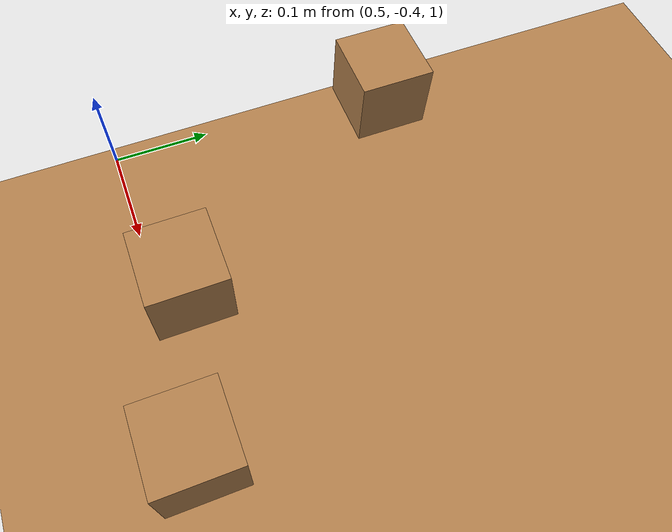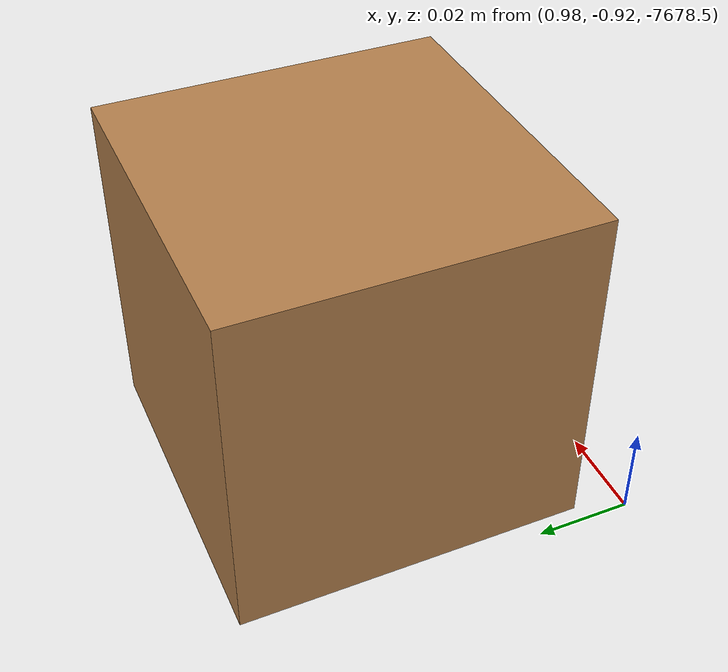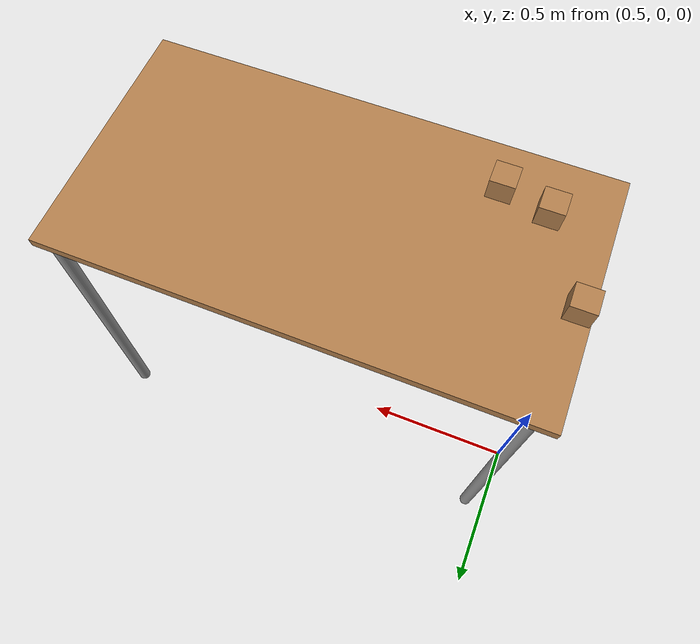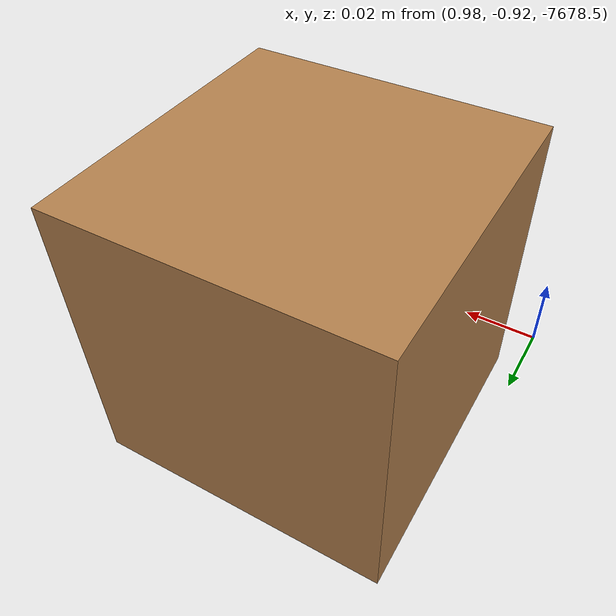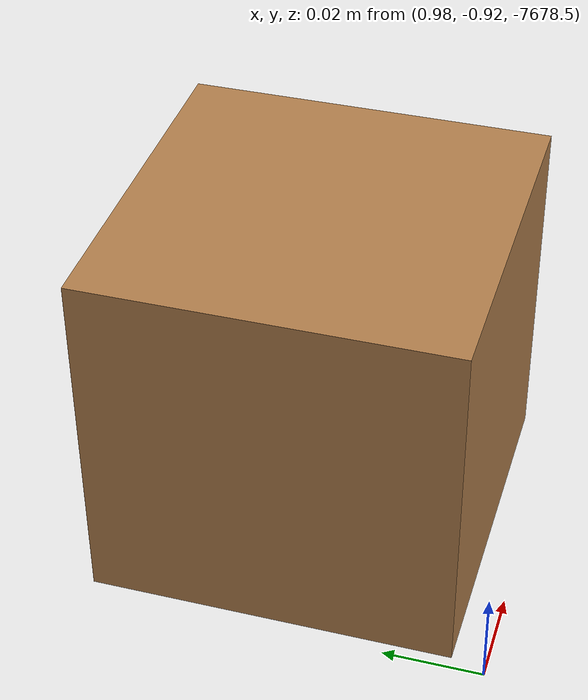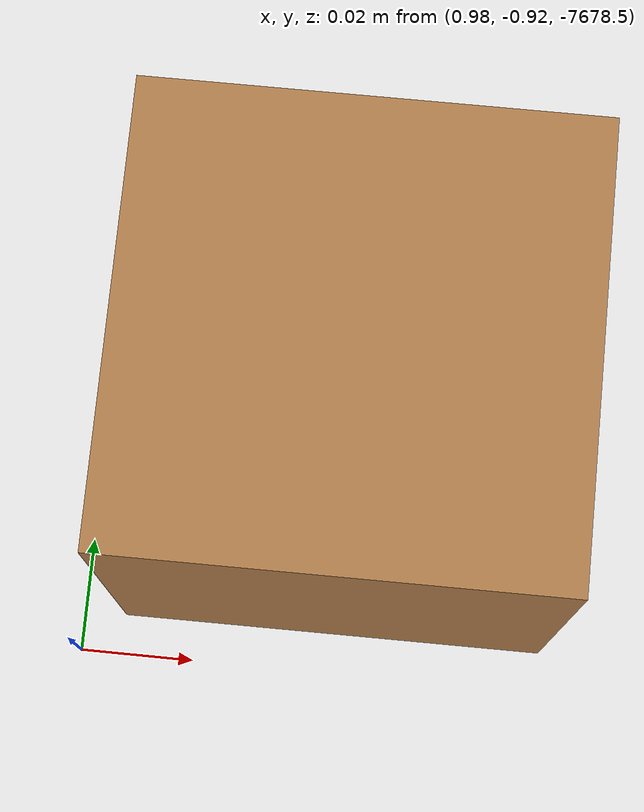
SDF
<sdf version="1.7">
 <world name="__default__">
  <plugin name="gazebo_link_attacher" filename="libgazebo_link_attacher.so"/>
  <gravity>0 0 -9.8</gravity>
  <plugin name="gazebo_ros" filename="libgazebo_ros_api_plugin.so"/>
  <magnetic_field>6e-06 2.3e-05 -4.2e-05</magnetic_field>
  <atmosphere type="adiabatic"/>
  <physics type="ode">
   <max_step_size>0.001</max_step_size>
   <real_time_factor>1</real_time_factor>
   <real_time_update_rate>1000</real_time_update_rate>
  </physics>
  <scene><ambient>0.4 0.4 0.4 1</ambient><background>0.7 0.7 0.7 1</background><shadows>1</shadows></scene>
  <audio><device>default</device></audio>
  <spherical_coordinates>
   <surface_model>EARTH_WGS84</surface_model>
   <latitude_deg>0</latitude_deg>
   <longitude_deg>0</longitude_deg>
   <elevation>0</elevation>
   <heading_deg>0</heading_deg>
  </spherical_coordinates>
  <model name="wood_cube_7_5cm">
   <link name="link">
    <pose>-0.193128 -0.263736 1.35242 0 -0 0</pose>
    <inertial>
     <mass>0.2249</mass>
     <inertia>
      <ixx>0.00021084</ixx>
      <ixy>0</ixy>
      <ixz>0</ixz>
      <iyy>0.00021084</iyy>
      <iyz>0</iyz>
      <izz>0.00021084</izz>
     </inertia>
    </inertial>
    <visual name="visual">
     <geometry><box><size>0.075 0.075 0.075</size></box></geometry>
     <material>
      <script><uri>file://media/materials/scripts/gazebo.material</uri><name>Gazebo/Wood</name></script>
      <shader type="pixel"><normal_map>__default__</normal_map></shader>
      <ambient>1 0 0 0</ambient>
      <diffuse>1 1 1 1</diffuse>
      <specular>0.2 0.2 0.2 1</specular>
      <emissive>0 0 0 1</emissive>
     </material>
    </visual>
    <collision name="collision">
     <geometry><box><size>0.075 0.075 0.075</size></box></geometry>
     <surface>
      <friction>
       <ode><mu>1</mu><mu2>1</mu2><fdir1>0 0 0</fdir1><slip1>0</slip1><slip2>0</slip2></ode>
       <torsional>
        <coefficient>1</coefficient>
        <patch_radius>0</patch_radius>
        <surface_radius>0.01</surface_radius>
        <use_patch_radius>0</use_patch_radius>
        <ode><slip>0</slip></ode>
       </torsional>
      </friction>
      <bounce><restitution_coefficient>0</restitution_coefficient><threshold>1e+06</threshold></bounce>
      <contact>
       <collide_without_contact>0</collide_without_contact>
       <collide_without_contact_bitmask>1</collide_without_contact_bitmask>
       <collide_bitmask>1</collide_bitmask>
       <ode>
        <soft_cfm>0</soft_cfm>
        <soft_erp>0.2</soft_erp>
        <kp>100000</kp>
        <kd>100</kd>
        <max_vel>100</max_vel>
        <min_depth>0.001</min_depth>
       </ode>
       <bullet>
        <split_impulse>1</split_impulse>
        <split_impulse_penetration_threshold>-0.01</split_impulse_penetration_threshold>
        <soft_cfm>0</soft_cfm>
        <soft_erp>0.2</soft_erp>
        <kp>100000</kp>
        <kd>100</kd>
       </bullet>
      </contact>
     </surface>
    </collision>
   </link>
   <static>0</static>
   <pose>0.730006 0.151457 -0.300925 0 -0 0</pose>
  </model>
  <model name="table">
   <link name="link">
    <pose>0 0 0.256357 0 -0 0</pose>
    <visual name="visual1">
     <pose>0 0 1 0 -0 0</pose>
     <geometry><box><size>1.5 0.8 0.03</size></box></geometry>
     <material>
      <script><uri>file://media/materials/scripts/gazebo.material</uri><name>Gazebo/Wood</name></script>
      <shader type="pixel"/>
     </material>
    </visual>
    <visual name="front_left_leg">
     <pose>0.68 0.38 0.5 0 -0 0</pose>
     <geometry><cylinder><radius>0.02</radius><length>1</length></cylinder></geometry>
     <material>
      <script><uri>file://media/materials/scripts/gazebo.material</uri><name>Gazebo/Grey</name></script>
      <shader type="pixel"/>
     </material>
    </visual>
    <visual name="front_right_leg">
     <pose>0.68 -0.38 0.5 0 -0 0</pose>
     <geometry><cylinder><radius>0.02</radius><length>1</length></cylinder></geometry>
     <material>
      <script><uri>file://media/materials/scripts/gazebo.material</uri><name>Gazebo/Grey</name></script>
      <shader type="pixel"/>
     </material>
    </visual>
    <visual name="back_right_leg">
     <pose>-0.68 -0.38 0.5 0 -0 0</pose>
     <geometry><cylinder><radius>0.02</radius><length>1</length></cylinder></geometry>
     <material>
      <script><uri>file://media/materials/scripts/gazebo.material</uri><name>Gazebo/Grey</name></script>
      <shader type="pixel"/>
     </material>
    </visual>
    <visual name="back_left_leg">
     <pose>-0.68 0.38 0.5 0 -0 0</pose>
     <geometry><cylinder><radius>0.02</radius><length>1</length></cylinder></geometry>
     <material>
      <script><uri>file://media/materials/scripts/gazebo.material</uri><name>Gazebo/Grey</name></script>
      <shader type="pixel"/>
     </material>
    </visual>
    <collision name="surface">
     <pose>0 0 1 0 -0 0</pose>
     <geometry><box><size>1.5 0.8 0.03</size></box></geometry>
     <surface>
      <friction>
       <ode><mu>0.6</mu><mu2>0.6</mu2><fdir1>0 0 0</fdir1><slip1>0</slip1><slip2>0</slip2></ode>
       <torsional>
        <coefficient>1</coefficient>
        <patch_radius>0</patch_radius>
        <surface_radius>0</surface_radius>
        <use_patch_radius>1</use_patch_radius>
        <ode><slip>0</slip></ode>
       </torsional>
      </friction>
      <bounce><restitution_coefficient>0</restitution_coefficient><threshold>1e+06</threshold></bounce>
      <contact>
       <collide_without_contact>0</collide_without_contact>
       <collide_without_contact_bitmask>1</collide_without_contact_bitmask>
       <collide_bitmask>1</collide_bitmask>
       <ode>
        <soft_cfm>0</soft_cfm>
        <soft_erp>0.2</soft_erp>
        <kp>1e+13</kp>
        <kd>1</kd>
        <max_vel>0.01</max_vel>
        <min_depth>0</min_depth>
       </ode>
       <bullet>
        <split_impulse>1</split_impulse>
        <split_impulse_penetration_threshold>-0.01</split_impulse_penetration_threshold>
        <soft_cfm>0</soft_cfm>
        <soft_erp>0.2</soft_erp>
        <kp>1e+13</kp>
        <kd>1</kd>
       </bullet>
      </contact>
     </surface>
    </collision>
    <collision name="front_left_leg">
     <pose>0.68 0.38 0.5 0 -0 0</pose>
     <geometry><cylinder><radius>0.02</radius><length>1</length></cylinder></geometry>
     <surface>
      <friction>
       <ode><mu>1</mu><mu2>1</mu2><fdir1>0 0 0</fdir1><slip1>0</slip1><slip2>0</slip2></ode>
       <torsional>
        <coefficient>1</coefficient>
        <patch_radius>0</patch_radius>
        <surface_radius>0</surface_radius>
        <use_patch_radius>1</use_patch_radius>
        <ode><slip>0</slip></ode>
       </torsional>
      </friction>
      <bounce><restitution_coefficient>0</restitution_coefficient><threshold>1e+06</threshold></bounce>
      <contact>
       <collide_without_contact>0</collide_without_contact>
       <collide_without_contact_bitmask>1</collide_without_contact_bitmask>
       <collide_bitmask>1</collide_bitmask>
       <ode>
        <soft_cfm>0</soft_cfm>
        <soft_erp>0.2</soft_erp>
        <kp>1e+13</kp>
        <kd>1</kd>
        <max_vel>0.01</max_vel>
        <min_depth>0</min_depth>
       </ode>
       <bullet>
        <split_impulse>1</split_impulse>
        <split_impulse_penetration_threshold>-0.01</split_impulse_penetration_threshold>
        <soft_cfm>0</soft_cfm>
        <soft_erp>0.2</soft_erp>
        <kp>1e+13</kp>
        <kd>1</kd>
       </bullet>
      </contact>
     </surface>
    </collision>
    <collision name="front_right_leg">
     <pose>0.68 -0.38 0.5 0 -0 0</pose>
     <geometry><cylinder><radius>0.02</radius><length>1</length></cylinder></geometry>
     <surface>
      <friction>
       <ode><mu>1</mu><mu2>1</mu2><fdir1>0 0 0</fdir1><slip1>0</slip1><slip2>0</slip2></ode>
       <torsional>
        <coefficient>1</coefficient>
        <patch_radius>0</patch_radius>
        <surface_radius>0</surface_radius>
        <use_patch_radius>1</use_patch_radius>
        <ode><slip>0</slip></ode>
       </torsional>
      </friction>
      <bounce><restitution_coefficient>0</restitution_coefficient><threshold>1e+06</threshold></bounce>
      <contact>
       <collide_without_contact>0</collide_without_contact>
       <collide_without_contact_bitmask>1</collide_without_contact_bitmask>
       <collide_bitmask>1</collide_bitmask>
       <ode>
        <soft_cfm>0</soft_cfm>
        <soft_erp>0.2</soft_erp>
        <kp>1e+13</kp>
        <kd>1</kd>
        <max_vel>0.01</max_vel>
        <min_depth>0</min_depth>
       </ode>
       <bullet>
        <split_impulse>1</split_impulse>
        <split_impulse_penetration_threshold>-0.01</split_impulse_penetration_threshold>
        <soft_cfm>0</soft_cfm>
        <soft_erp>0.2</soft_erp>
        <kp>1e+13</kp>
        <kd>1</kd>
       </bullet>
      </contact>
     </surface>
    </collision>
    <collision name="back_right_leg">
     <pose>-0.68 -0.38 0.5 0 -0 0</pose>
     <geometry><cylinder><radius>0.02</radius><length>1</length></cylinder></geometry>
     <surface>
      <friction>
       <ode><mu>1</mu><mu2>1</mu2><fdir1>0 0 0</fdir1><slip1>0</slip1><slip2>0</slip2></ode>
       <torsional>
        <coefficient>1</coefficient>
        <patch_radius>0</patch_radius>
        <surface_radius>0</surface_radius>
        <use_patch_radius>1</use_patch_radius>
        <ode><slip>0</slip></ode>
       </torsional>
      </friction>
      <bounce><restitution_coefficient>0</restitution_coefficient><threshold>1e+06</threshold></bounce>
      <contact>
       <collide_without_contact>0</collide_without_contact>
       <collide_without_contact_bitmask>1</collide_without_contact_bitmask>
       <collide_bitmask>1</collide_bitmask>
       <ode>
        <soft_cfm>0</soft_cfm>
        <soft_erp>0.2</soft_erp>
        <kp>1e+13</kp>
        <kd>1</kd>
        <max_vel>0.01</max_vel>
        <min_depth>0</min_depth>
       </ode>
       <bullet>
        <split_impulse>1</split_impulse>
        <split_impulse_penetration_threshold>-0.01</split_impulse_penetration_threshold>
        <soft_cfm>0</soft_cfm>
        <soft_erp>0.2</soft_erp>
        <kp>1e+13</kp>
        <kd>1</kd>
       </bullet>
      </contact>
     </surface>
    </collision>
    <collision name="back_left_leg">
     <pose>-0.68 0.38 0.5 0 -0 0</pose>
     <geometry><cylinder><radius>0.02</radius><length>1</length></cylinder></geometry>
     <surface>
      <friction>
       <ode><mu>1</mu><mu2>1</mu2><fdir1>0 0 0</fdir1><slip1>0</slip1><slip2>0</slip2></ode>
       <torsional>
        <coefficient>1</coefficient>
        <patch_radius>0</patch_radius>
        <surface_radius>0</surface_radius>
        <use_patch_radius>1</use_patch_radius>
        <ode><slip>0</slip></ode>
       </torsional>
      </friction>
      <bounce><restitution_coefficient>0</restitution_coefficient><threshold>1e+06</threshold></bounce>
      <contact>
       <collide_without_contact>0</collide_without_contact>
       <collide_without_contact_bitmask>1</collide_without_contact_bitmask>
       <collide_bitmask>1</collide_bitmask>
       <ode>
        <soft_cfm>0</soft_cfm>
        <soft_erp>0.2</soft_erp>
        <kp>1e+13</kp>
        <kd>1</kd>
        <max_vel>0.01</max_vel>
        <min_depth>0</min_depth>
       </ode>
       <bullet>
        <split_impulse>1</split_impulse>
        <split_impulse_penetration_threshold>-0.01</split_impulse_penetration_threshold>
        <soft_cfm>0</soft_cfm>
        <soft_erp>0.2</soft_erp>
        <kp>1e+13</kp>
        <kd>1</kd>
       </bullet>
      </contact>
     </surface>
    </collision>
   </link>
   <static>1</static>
   <pose>1.24607 -0.166866 -0.256357 0 -0 0</pose>
  </model>
  <model name="wood_cube_7_5cm_clone">
   <link name="link">
    <pose>-0.193128 -0.263736 1.35242 0 -0 0</pose>
    <inertial>
     <mass>0.2249</mass>
     <inertia>
      <ixx>0.00021084</ixx>
      <ixy>0</ixy>
      <ixz>0</ixz>
      <iyy>0.00021084</iyy>
      <iyz>0</iyz>
      <izz>0.00021084</izz>
     </inertia>
    </inertial>
    <visual name="visual">
     <geometry><box><size>0.075 0.075 0.075</size></box></geometry>
     <material>
      <script><uri>file://media/materials/scripts/gazebo.material</uri><name>Gazebo/Wood</name></script>
      <shader type="pixel"><normal_map>__default__</normal_map></shader>
      <ambient>1 0 0 0</ambient>
      <diffuse>1 1 1 1</diffuse>
      <specular>0.2 0.2 0.2 1</specular>
      <emissive>0 0 0 1</emissive>
     </material>
    </visual>
    <collision name="collision">
     <geometry><box><size>0.075 0.075 0.075</size></box></geometry>
     <surface>
      <friction>
       <ode><mu>1</mu><mu2>1</mu2><fdir1>0 0 0</fdir1><slip1>0</slip1><slip2>0</slip2></ode>
       <torsional>
        <coefficient>1</coefficient>
        <patch_radius>0</patch_radius>
        <surface_radius>0.01</surface_radius>
        <use_patch_radius>0</use_patch_radius>
        <ode><slip>0</slip></ode>
       </torsional>
      </friction>
      <bounce><restitution_coefficient>0</restitution_coefficient><threshold>1e+06</threshold></bounce>
      <contact>
       <collide_without_contact>0</collide_without_contact>
       <collide_without_contact_bitmask>1</collide_without_contact_bitmask>
       <collide_bitmask>1</collide_bitmask>
       <ode>
        <soft_cfm>0</soft_cfm>
        <soft_erp>0.2</soft_erp>
        <kp>100000</kp>
        <kd>100</kd>
        <max_vel>100</max_vel>
        <min_depth>0.001</min_depth>
       </ode>
       <bullet>
        <split_impulse>1</split_impulse>
        <split_impulse_penetration_threshold>-0.01</split_impulse_penetration_threshold>
        <soft_cfm>0</soft_cfm>
        <soft_erp>0.2</soft_erp>
        <kp>100000</kp>
        <kd>100</kd>
       </bullet>
      </contact>
     </surface>
    </collision>
   </link>
   <static>0</static>
   <pose>1.21742 -0.611184 -7679.82 0 -0 0</pose>
  </model>
  <model name="wood_cube_7_5cm_clone_0">
   <link name="link">
    <pose>-0.193128 -0.263736 1.35242 0 -0 0</pose>
    <inertial>
     <mass>0.2249</mass>
     <inertia>
      <ixx>0.00021084</ixx>
      <ixy>0</ixy>
      <ixz>0</ixz>
      <iyy>0.00021084</iyy>
      <iyz>0</iyz>
      <izz>0.00021084</izz>
     </inertia>
    </inertial>
    <visual name="visual">
     <geometry><box><size>0.075 0.075 0.075</size></box></geometry>
     <material>
      <script><uri>file://media/materials/scripts/gazebo.material</uri><name>Gazebo/Wood</name></script>
      <shader type="pixel"><normal_map>__default__</normal_map></shader>
      <ambient>0 1 0 1</ambient>
      <diffuse>0 1 0 1</diffuse>
      <specular>0.2 0.2 0.2 1</specular>
      <emissive>0 0 0 1</emissive>
     </material>
    </visual>
    <collision name="collision">
     <geometry><box><size>0.075 0.075 0.075</size></box></geometry>
     <surface>
      <friction>
       <ode><mu>1</mu><mu2>1</mu2><fdir1>0 0 0</fdir1><slip1>0</slip1><slip2>0</slip2></ode>
       <torsional>
        <coefficient>1</coefficient>
        <patch_radius>0</patch_radius>
        <surface_radius>0.01</surface_radius>
        <use_patch_radius>0</use_patch_radius>
        <ode><slip>0</slip></ode>
       </torsional>
      </friction>
      <bounce><restitution_coefficient>0</restitution_coefficient><threshold>1e+06</threshold></bounce>
      <contact>
       <collide_without_contact>0</collide_without_contact>
       <collide_without_contact_bitmask>1</collide_without_contact_bitmask>
       <collide_bitmask>1</collide_bitmask>
       <ode>
        <soft_cfm>0</soft_cfm>
        <soft_erp>0.2</soft_erp>
        <kp>100000</kp>
        <kd>100</kd>
        <max_vel>100</max_vel>
        <min_depth>0.001</min_depth>
       </ode>
       <bullet>
        <split_impulse>1</split_impulse>
        <split_impulse_penetration_threshold>-0.01</split_impulse_penetration_threshold>
        <soft_cfm>0</soft_cfm>
        <soft_erp>0.2</soft_erp>
        <kp>100000</kp>
        <kd>100</kd>
       </bullet>
      </contact>
     </surface>
    </collision>
   </link>
   <static>0</static>
   <pose>1.02776 -0.142759 -0.300925 0 -0 0</pose>
  </model>
  <model name="wood_cube_7_5cm_clone_0_clone">
   <link name="link">
    <pose>-0.193128 -0.263736 1.35242 0 -0 0</pose>
    <inertial>
     <mass>0.2249</mass>
     <inertia>
      <ixx>0.00021084</ixx>
      <ixy>0</ixy>
      <ixz>0</ixz>
      <iyy>0.00021084</iyy>
      <iyz>0</iyz>
      <izz>0.00021084</izz>
     </inertia>
    </inertial>
    <visual name="visual">
     <geometry><box><size>0.075 0.075 0.075</size></box></geometry>
     <material>
      <script><uri>file://media/materials/scripts/gazebo.material</uri><name>Gazebo/Wood</name></script>
      <shader type="pixel"><normal_map>__default__</normal_map></shader>
      <ambient>0 0 1 1</ambient>
      <diffuse>0 1 0 1</diffuse>
      <specular>0.2 0.2 0.2 1</specular>
      <emissive>0 0 0 1</emissive>
     </material>
    </visual>
    <collision name="collision">
     <geometry><box><size>0.075 0.075 0.075</size></box></geometry>
     <surface>
      <friction>
       <ode><mu>1</mu><mu2>1</mu2><fdir1>0 0 0</fdir1><slip1>0</slip1><slip2>0</slip2></ode>
       <torsional>
        <coefficient>1</coefficient>
        <patch_radius>0</patch_radius>
        <surface_radius>0.01</surface_radius>
        <use_patch_radius>0</use_patch_radius>
        <ode><slip>0</slip></ode>
       </torsional>
      </friction>
      <bounce><restitution_coefficient>0</restitution_coefficient><threshold>1e+06</threshold></bounce>
      <contact>
       <collide_without_contact>0</collide_without_contact>
       <collide_without_contact_bitmask>1</collide_without_contact_bitmask>
       <collide_bitmask>1</collide_bitmask>
       <ode>
        <soft_cfm>0</soft_cfm>
        <soft_erp>0.2</soft_erp>
        <kp>100000</kp>
        <kd>100</kd>
        <max_vel>100</max_vel>
        <min_depth>0.001</min_depth>
       </ode>
       <bullet>
        <split_impulse>1</split_impulse>
        <split_impulse_penetration_threshold>-0.01</split_impulse_penetration_threshold>
        <soft_cfm>0</soft_cfm>
        <soft_erp>0.2</soft_erp>
        <kp>100000</kp>
        <kd>100</kd>
       </bullet>
      </contact>
     </surface>
    </collision>
   </link>
   <static>0</static>
   <pose>0.878748 -0.107763 -0.300925 0 -0 0</pose>
  </model>
 </world>
</sdf>
